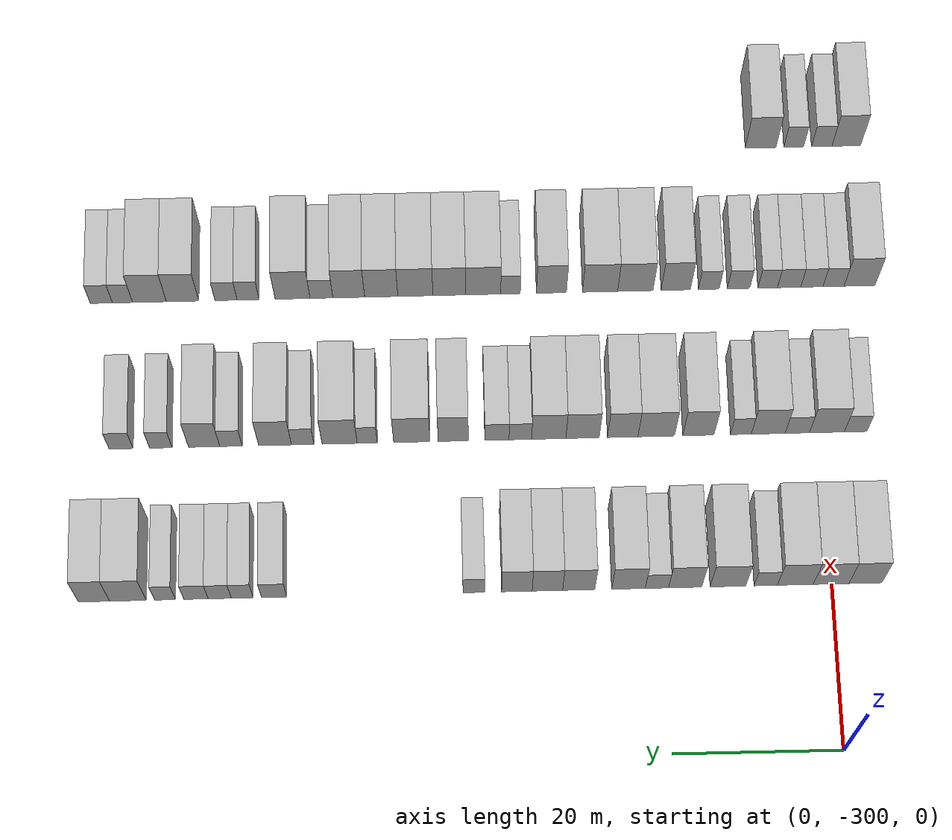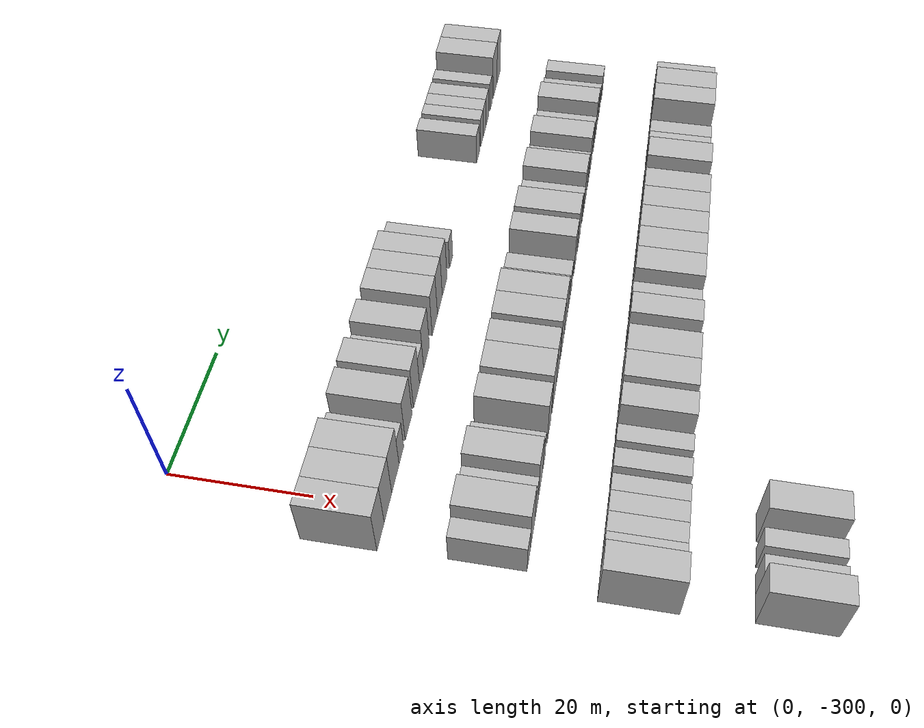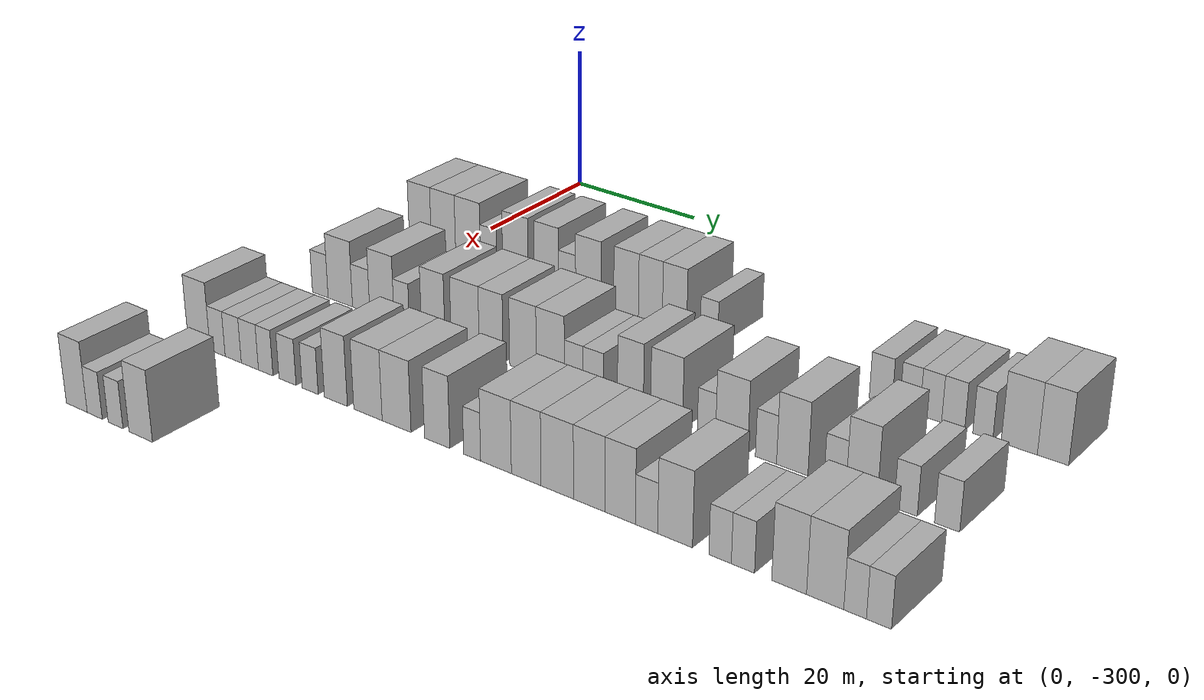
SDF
<sdf version="1.6">
 <world name="default">
  <model name="building_14">
   <static>1</static>
   <pose>25.0000 -303.9843 0 0.000000 0.000000 0.000000</pose>
   <link name="link">
    <pose>0 0 4.50 0 0 0</pose>
    <collision name="collision"><geometry><box><size>10.0000 3.9499 9.0000</size></box></geometry></collision>
    <visual name="visual">
     <cast_shadows>0</cast_shadows>
     <geometry><box><size>10.0000 3.9499 9.0000</size></box></geometry>
     <material>
      <script>
       <uri>model://HANNAS_wall/materials/scripts</uri>
       <uri>model://HANNAS_wall/materials/textures</uri>
       <name>vrc/HANNAS_wall</name>
      </script>
     </material>
    </visual>
   </link>
  </model>
  <model name="building_15">
   <static>1</static>
   <pose>25.0000 -299.8745 0 0.000000 0.000000 0.000000</pose>
   <link name="link">
    <pose>0 0 4.50 0 0 0</pose>
    <collision name="collision"><geometry><box><size>10.0000 4.2697 9.0000</size></box></geometry></collision>
    <visual name="visual">
     <cast_shadows>0</cast_shadows>
     <geometry><box><size>10.0000 4.2697 9.0000</size></box></geometry>
     <material>
      <script>
       <uri>model://HANNAS_wall/materials/scripts</uri>
       <uri>model://HANNAS_wall/materials/textures</uri>
       <name>vrc/HANNAS_wall</name>
      </script>
     </material>
    </visual>
   </link>
  </model>
  <model name="building_16">
   <static>1</static>
   <pose>25.0000 -295.5966 0 0.000000 0.000000 0.000000</pose>
   <link name="link">
    <pose>0 0 4.50 0 0 0</pose>
    <collision name="collision"><geometry><box><size>10.0000 4.2861 9.0000</size></box></geometry></collision>
    <visual name="visual">
     <cast_shadows>0</cast_shadows>
     <geometry><box><size>10.0000 4.2861 9.0000</size></box></geometry>
     <material>
      <script>
       <uri>model://HANNAS_wall/materials/scripts</uri>
       <uri>model://HANNAS_wall/materials/textures</uri>
       <name>vrc/HANNAS_wall</name>
      </script>
     </material>
    </visual>
   </link>
  </model>
  <model name="building_17">
   <static>1</static>
   <pose>25.0000 -292.0606 0 0.000000 0.000000 0.000000</pose>
   <link name="link">
    <pose>0 0 3.00 0 0 0</pose>
    <collision name="collision"><geometry><box><size>10.0000 2.7860 6.0000</size></box></geometry></collision>
    <visual name="visual">
     <cast_shadows>0</cast_shadows>
     <geometry><box><size>10.0000 2.7860 6.0000</size></box></geometry>
     <material>
      <script>
       <uri>model://HANNAS_wall/materials/scripts</uri>
       <uri>model://HANNAS_wall/materials/textures</uri>
       <name>vrc/HANNAS_wall</name>
      </script>
     </material>
    </visual>
   </link>
  </model>
  <model name="building_18">
   <static>1</static>
   <pose>25.0000 -287.5462 0 0.000000 0.000000 0.000000</pose>
   <link name="link">
    <pose>0 0 4.50 0 0 0</pose>
    <collision name="collision"><geometry><box><size>10.0000 4.2428 9.0000</size></box></geometry></collision>
    <visual name="visual">
     <cast_shadows>0</cast_shadows>
     <geometry><box><size>10.0000 4.2428 9.0000</size></box></geometry>
     <material>
      <script>
       <uri>model://HANNAS_wall/materials/scripts</uri>
       <uri>model://HANNAS_wall/materials/textures</uri>
       <name>vrc/HANNAS_wall</name>
      </script>
     </material>
    </visual>
   </link>
  </model>
  <model name="building_19">
   <static>1</static>
   <pose>25.0000 -282.4468 0 0.000000 0.000000 0.000000</pose>
   <link name="link">
    <pose>0 0 4.50 0 0 0</pose>
    <collision name="collision"><geometry><box><size>10.0000 3.9561 9.0000</size></box></geometry></collision>
    <visual name="visual">
     <cast_shadows>0</cast_shadows>
     <geometry><box><size>10.0000 3.9561 9.0000</size></box></geometry>
     <material>
      <script>
       <uri>model://HANNAS_wall/materials/scripts</uri>
       <uri>model://HANNAS_wall/materials/textures</uri>
       <name>vrc/HANNAS_wall</name>
      </script>
     </material>
    </visual>
   </link>
  </model>
  <model name="building_20">
   <static>1</static>
   <pose>25.0000 -279.0800 0 0.000000 0.000000 0.000000</pose>
   <link name="link">
    <pose>0 0 3.00 0 0 0</pose>
    <collision name="collision"><geometry><box><size>10.0000 2.7774 6.0000</size></box></geometry></collision>
    <visual name="visual">
     <cast_shadows>0</cast_shadows>
     <geometry><box><size>10.0000 2.7774 6.0000</size></box></geometry>
     <material>
      <script>
       <uri>model://HANNAS_wall/materials/scripts</uri>
       <uri>model://HANNAS_wall/materials/textures</uri>
       <name>vrc/HANNAS_wall</name>
      </script>
     </material>
    </visual>
   </link>
  </model>
  <model name="building_21">
   <static>1</static>
   <pose>25.0000 -275.6909 0 0.000000 0.000000 0.000000</pose>
   <link name="link">
    <pose>0 0 4.50 0 0 0</pose>
    <collision name="collision"><geometry><box><size>10.0000 4.0008 9.0000</size></box></geometry></collision>
    <visual name="visual">
     <cast_shadows>0</cast_shadows>
     <geometry><box><size>10.0000 4.0008 9.0000</size></box></geometry>
     <material>
      <script>
       <uri>model://HANNAS_wall/materials/scripts</uri>
       <uri>model://HANNAS_wall/materials/textures</uri>
       <name>vrc/HANNAS_wall</name>
      </script>
     </material>
    </visual>
   </link>
  </model>
  <model name="building_22">
   <static>1</static>
   <pose>25.0000 -269.7736 0 0.000000 0.000000 0.000000</pose>
   <link name="link">
    <pose>0 0 4.50 0 0 0</pose>
    <collision name="collision"><geometry><box><size>10.0000 3.8338 9.0000</size></box></geometry></collision>
    <visual name="visual">
     <cast_shadows>0</cast_shadows>
     <geometry><box><size>10.0000 3.8338 9.0000</size></box></geometry>
     <material>
      <script>
       <uri>model://HANNAS_wall/materials/scripts</uri>
       <uri>model://HANNAS_wall/materials/textures</uri>
       <name>vrc/HANNAS_wall</name>
      </script>
     </material>
    </visual>
   </link>
  </model>
  <model name="building_23">
   <static>1</static>
   <pose>25.0000 -266.0388 0 0.000000 0.000000 0.000000</pose>
   <link name="link">
    <pose>0 0 4.50 0 0 0</pose>
    <collision name="collision"><geometry><box><size>10.0000 3.6357 9.0000</size></box></geometry></collision>
    <visual name="visual">
     <cast_shadows>0</cast_shadows>
     <geometry><box><size>10.0000 3.6357 9.0000</size></box></geometry>
     <material>
      <script>
       <uri>model://HANNAS_wall/materials/scripts</uri>
       <uri>model://HANNAS_wall/materials/textures</uri>
       <name>vrc/HANNAS_wall</name>
      </script>
     </material>
    </visual>
   </link>
  </model>
  <model name="building_24">
   <static>1</static>
   <pose>25.0000 -262.4024 0 0.000000 0.000000 0.000000</pose>
   <link name="link">
    <pose>0 0 4.50 0 0 0</pose>
    <collision name="collision"><geometry><box><size>10.0000 3.6371 9.0000</size></box></geometry></collision>
    <visual name="visual">
     <cast_shadows>0</cast_shadows>
     <geometry><box><size>10.0000 3.6371 9.0000</size></box></geometry>
     <material>
      <script>
       <uri>model://HANNAS_wall/materials/scripts</uri>
       <uri>model://HANNAS_wall/materials/textures</uri>
       <name>vrc/HANNAS_wall</name>
      </script>
     </material>
    </visual>
   </link>
  </model>
  <model name="building_25">
   <static>1</static>
   <pose>25.0000 -257.2900 0 0.000000 0.000000 0.000000</pose>
   <link name="link">
    <pose>0 0 3.00 0 0 0</pose>
    <collision name="collision"><geometry><box><size>10.0000 2.5878 6.0000</size></box></geometry></collision>
    <visual name="visual">
     <cast_shadows>0</cast_shadows>
     <geometry><box><size>10.0000 2.5878 6.0000</size></box></geometry>
     <material>
      <script>
       <uri>model://HANNAS_wall/materials/scripts</uri>
       <uri>model://HANNAS_wall/materials/textures</uri>
       <name>vrc/HANNAS_wall</name>
      </script>
     </material>
    </visual>
   </link>
  </model>
  <model name="building_26">
   <static>1</static>
   <pose>25.0000 -233.5116 0 0.000000 0.000000 0.000000</pose>
   <link name="link">
    <pose>0 0 3.00 0 0 0</pose>
    <collision name="collision"><geometry><box><size>10.0000 2.9897 6.0000</size></box></geometry></collision>
    <visual name="visual">
     <cast_shadows>0</cast_shadows>
     <geometry><box><size>10.0000 2.9897 6.0000</size></box></geometry>
     <material>
      <script>
       <uri>model://HANNAS_wall/materials/scripts</uri>
       <uri>model://HANNAS_wall/materials/textures</uri>
       <name>vrc/HANNAS_wall</name>
      </script>
     </material>
    </visual>
   </link>
  </model>
  <model name="building_27">
   <static>1</static>
   <pose>25.0000 -229.7258 0 0.000000 0.000000 0.000000</pose>
   <link name="link">
    <pose>0 0 3.00 0 0 0</pose>
    <collision name="collision"><geometry><box><size>10.0000 2.5821 6.0000</size></box></geometry></collision>
    <visual name="visual">
     <cast_shadows>0</cast_shadows>
     <geometry><box><size>10.0000 2.5821 6.0000</size></box></geometry>
     <material>
      <script>
       <uri>model://HANNAS_wall/materials/scripts</uri>
       <uri>model://HANNAS_wall/materials/textures</uri>
       <name>vrc/HANNAS_wall</name>
      </script>
     </material>
    </visual>
   </link>
  </model>
  <model name="building_28">
   <static>1</static>
   <pose>25.0000 -227.0556 0 0.000000 0.000000 0.000000</pose>
   <link name="link">
    <pose>0 0 3.00 0 0 0</pose>
    <collision name="collision"><geometry><box><size>10.0000 2.7582 6.0000</size></box></geometry></collision>
    <visual name="visual">
     <cast_shadows>0</cast_shadows>
     <geometry><box><size>10.0000 2.7582 6.0000</size></box></geometry>
     <material>
      <script>
       <uri>model://HANNAS_wall/materials/scripts</uri>
       <uri>model://HANNAS_wall/materials/textures</uri>
       <name>vrc/HANNAS_wall</name>
      </script>
     </material>
    </visual>
   </link>
  </model>
  <model name="building_29">
   <static>1</static>
   <pose>25.0000 -224.2311 0 0.000000 0.000000 0.000000</pose>
   <link name="link">
    <pose>0 0 3.00 0 0 0</pose>
    <collision name="collision"><geometry><box><size>10.0000 2.8908 6.0000</size></box></geometry></collision>
    <visual name="visual">
     <cast_shadows>0</cast_shadows>
     <geometry><box><size>10.0000 2.8908 6.0000</size></box></geometry>
     <material>
      <script>
       <uri>model://HANNAS_wall/materials/scripts</uri>
       <uri>model://HANNAS_wall/materials/textures</uri>
       <name>vrc/HANNAS_wall</name>
      </script>
     </material>
    </visual>
   </link>
  </model>
  <model name="building_30">
   <static>1</static>
   <pose>25.0000 -220.5526 0 0.000000 0.000000 0.000000</pose>
   <link name="link">
    <pose>0 0 3.00 0 0 0</pose>
    <collision name="collision"><geometry><box><size>10.0000 2.4663 6.0000</size></box></geometry></collision>
    <visual name="visual">
     <cast_shadows>0</cast_shadows>
     <geometry><box><size>10.0000 2.4663 6.0000</size></box></geometry>
     <material>
      <script>
       <uri>model://HANNAS_wall/materials/scripts</uri>
       <uri>model://HANNAS_wall/materials/textures</uri>
       <name>vrc/HANNAS_wall</name>
      </script>
     </material>
    </visual>
   </link>
  </model>
  <model name="building_31">
   <static>1</static>
   <pose>25.0000 -216.1417 0 0.000000 0.000000 0.000000</pose>
   <link name="link">
    <pose>0 0 4.50 0 0 0</pose>
    <collision name="collision"><geometry><box><size>10.0000 4.3555 9.0000</size></box></geometry></collision>
    <visual name="visual">
     <cast_shadows>0</cast_shadows>
     <geometry><box><size>10.0000 4.3555 9.0000</size></box></geometry>
     <material>
      <script>
       <uri>model://HANNAS_wall/materials/scripts</uri>
       <uri>model://HANNAS_wall/materials/textures</uri>
       <name>vrc/HANNAS_wall</name>
      </script>
     </material>
    </visual>
   </link>
  </model>
  <model name="building_32">
   <static>1</static>
   <pose>25.0000 -212.1116 0 0.000000 0.000000 0.000000</pose>
   <link name="link">
    <pose>0 0 4.50 0 0 0</pose>
    <collision name="collision"><geometry><box><size>10.0000 3.7047 9.0000</size></box></geometry></collision>
    <visual name="visual">
     <cast_shadows>0</cast_shadows>
     <geometry><box><size>10.0000 3.7047 9.0000</size></box></geometry>
     <material>
      <script>
       <uri>model://HANNAS_wall/materials/scripts</uri>
       <uri>model://HANNAS_wall/materials/textures</uri>
       <name>vrc/HANNAS_wall</name>
      </script>
     </material>
    </visual>
   </link>
  </model>
  <model name="building_188">
   <static>1</static>
   <pose>44.0000 -304.1662 0 0.000000 0.000000 0.000000</pose>
   <link name="link">
    <pose>0 0 3.00 0 0 0</pose>
    <collision name="collision"><geometry><box><size>10.0000 2.7591 6.0000</size></box></geometry></collision>
    <visual name="visual">
     <cast_shadows>0</cast_shadows>
     <geometry><box><size>10.0000 2.7591 6.0000</size></box></geometry>
     <material>
      <script>
       <uri>model://HANNAS_wall/materials/scripts</uri>
       <uri>model://HANNAS_wall/materials/textures</uri>
       <name>vrc/HANNAS_wall</name>
      </script>
     </material>
    </visual>
   </link>
  </model>
  <model name="building_189">
   <static>1</static>
   <pose>44.0000 -300.6601 0 0.000000 0.000000 0.000000</pose>
   <link name="link">
    <pose>0 0 4.50 0 0 0</pose>
    <collision name="collision"><geometry><box><size>10.0000 4.2531 9.0000</size></box></geometry></collision>
    <visual name="visual">
     <cast_shadows>0</cast_shadows>
     <geometry><box><size>10.0000 4.2531 9.0000</size></box></geometry>
     <material>
      <script>
       <uri>model://HANNAS_wall/materials/scripts</uri>
       <uri>model://HANNAS_wall/materials/textures</uri>
       <name>vrc/HANNAS_wall</name>
      </script>
     </material>
    </visual>
   </link>
  </model>
  <model name="building_190">
   <static>1</static>
   <pose>44.0000 -297.0552 0 0.000000 0.000000 0.000000</pose>
   <link name="link">
    <pose>0 0 3.00 0 0 0</pose>
    <collision name="collision"><geometry><box><size>10.0000 2.9566 6.0000</size></box></geometry></collision>
    <visual name="visual">
     <cast_shadows>0</cast_shadows>
     <geometry><box><size>10.0000 2.9566 6.0000</size></box></geometry>
     <material>
      <script>
       <uri>model://HANNAS_wall/materials/scripts</uri>
       <uri>model://HANNAS_wall/materials/textures</uri>
       <name>vrc/HANNAS_wall</name>
      </script>
     </material>
    </visual>
   </link>
  </model>
  <model name="building_191">
   <static>1</static>
   <pose>44.0000 -293.5176 0 0.000000 0.000000 0.000000</pose>
   <link name="link">
    <pose>0 0 4.50 0 0 0</pose>
    <collision name="collision"><geometry><box><size>10.0000 4.1186 9.0000</size></box></geometry></collision>
    <visual name="visual">
     <cast_shadows>0</cast_shadows>
     <geometry><box><size>10.0000 4.1186 9.0000</size></box></geometry>
     <material>
      <script>
       <uri>model://HANNAS_wall/materials/scripts</uri>
       <uri>model://HANNAS_wall/materials/textures</uri>
       <name>vrc/HANNAS_wall</name>
      </script>
     </material>
    </visual>
   </link>
  </model>
  <model name="building_192">
   <static>1</static>
   <pose>44.0000 -290.1883 0 0.000000 0.000000 0.000000</pose>
   <link name="link">
    <pose>0 0 3.00 0 0 0</pose>
    <collision name="collision"><geometry><box><size>10.0000 2.5401 6.0000</size></box></geometry></collision>
    <visual name="visual">
     <cast_shadows>0</cast_shadows>
     <geometry><box><size>10.0000 2.5401 6.0000</size></box></geometry>
     <material>
      <script>
       <uri>model://HANNAS_wall/materials/scripts</uri>
       <uri>model://HANNAS_wall/materials/textures</uri>
       <name>vrc/HANNAS_wall</name>
      </script>
     </material>
    </visual>
   </link>
  </model>
  <model name="building_193">
   <static>1</static>
   <pose>44.0000 -285.0162 0 0.000000 0.000000 0.000000</pose>
   <link name="link">
    <pose>0 0 4.50 0 0 0</pose>
    <collision name="collision"><geometry><box><size>10.0000 3.8040 9.0000</size></box></geometry></collision>
    <visual name="visual">
     <cast_shadows>0</cast_shadows>
     <geometry><box><size>10.0000 3.8040 9.0000</size></box></geometry>
     <material>
      <script>
       <uri>model://HANNAS_wall/materials/scripts</uri>
       <uri>model://HANNAS_wall/materials/textures</uri>
       <name>vrc/HANNAS_wall</name>
      </script>
     </material>
    </visual>
   </link>
  </model>
  <model name="building_194">
   <static>1</static>
   <pose>44.0000 -279.8894 0 0.000000 0.000000 0.000000</pose>
   <link name="link">
    <pose>0 0 4.50 0 0 0</pose>
    <collision name="collision"><geometry><box><size>10.0000 4.4496 9.0000</size></box></geometry></collision>
    <visual name="visual">
     <cast_shadows>0</cast_shadows>
     <geometry><box><size>10.0000 4.4496 9.0000</size></box></geometry>
     <material>
      <script>
       <uri>model://HANNAS_wall/materials/scripts</uri>
       <uri>model://HANNAS_wall/materials/textures</uri>
       <name>vrc/HANNAS_wall</name>
      </script>
     </material>
    </visual>
   </link>
  </model>
  <model name="building_195">
   <static>1</static>
   <pose>44.0000 -275.8088 0 0.000000 0.000000 0.000000</pose>
   <link name="link">
    <pose>0 0 4.50 0 0 0</pose>
    <collision name="collision"><geometry><box><size>10.0000 3.7117 9.0000</size></box></geometry></collision>
    <visual name="visual">
     <cast_shadows>0</cast_shadows>
     <geometry><box><size>10.0000 3.7117 9.0000</size></box></geometry>
     <material>
      <script>
       <uri>model://HANNAS_wall/materials/scripts</uri>
       <uri>model://HANNAS_wall/materials/textures</uri>
       <name>vrc/HANNAS_wall</name>
      </script>
     </material>
    </visual>
   </link>
  </model>
  <model name="building_196">
   <static>1</static>
   <pose>44.0000 -270.9281 0 0.000000 0.000000 0.000000</pose>
   <link name="link">
    <pose>0 0 4.50 0 0 0</pose>
    <collision name="collision"><geometry><box><size>10.0000 4.0497 9.0000</size></box></geometry></collision>
    <visual name="visual">
     <cast_shadows>0</cast_shadows>
     <geometry><box><size>10.0000 4.0497 9.0000</size></box></geometry>
     <material>
      <script>
       <uri>model://HANNAS_wall/materials/scripts</uri>
       <uri>model://HANNAS_wall/materials/textures</uri>
       <name>vrc/HANNAS_wall</name>
      </script>
     </material>
    </visual>
   </link>
  </model>
  <model name="building_197">
   <static>1</static>
   <pose>44.0000 -266.8199 0 0.000000 0.000000 0.000000</pose>
   <link name="link">
    <pose>0 0 4.50 0 0 0</pose>
    <collision name="collision"><geometry><box><size>10.0000 4.1667 9.0000</size></box></geometry></collision>
    <visual name="visual">
     <cast_shadows>0</cast_shadows>
     <geometry><box><size>10.0000 4.1667 9.0000</size></box></geometry>
     <material>
      <script>
       <uri>model://HANNAS_wall/materials/scripts</uri>
       <uri>model://HANNAS_wall/materials/textures</uri>
       <name>vrc/HANNAS_wall</name>
      </script>
     </material>
    </visual>
   </link>
  </model>
  <model name="building_198">
   <static>1</static>
   <pose>44.0000 -263.3643 0 0.000000 0.000000 0.000000</pose>
   <link name="link">
    <pose>0 0 3.00 0 0 0</pose>
    <collision name="collision"><geometry><box><size>10.0000 2.7443 6.0000</size></box></geometry></collision>
    <visual name="visual">
     <cast_shadows>0</cast_shadows>
     <geometry><box><size>10.0000 2.7443 6.0000</size></box></geometry>
     <material>
      <script>
       <uri>model://HANNAS_wall/materials/scripts</uri>
       <uri>model://HANNAS_wall/materials/textures</uri>
       <name>vrc/HANNAS_wall</name>
      </script>
     </material>
    </visual>
   </link>
  </model>
  <model name="building_199">
   <static>1</static>
   <pose>44.0000 -260.5247 0 0.000000 0.000000 0.000000</pose>
   <link name="link">
    <pose>0 0 3.00 0 0 0</pose>
    <collision name="collision"><geometry><box><size>10.0000 2.9349 6.0000</size></box></geometry></collision>
    <visual name="visual">
     <cast_shadows>0</cast_shadows>
     <geometry><box><size>10.0000 2.9349 6.0000</size></box></geometry>
     <material>
      <script>
       <uri>model://HANNAS_wall/materials/scripts</uri>
       <uri>model://HANNAS_wall/materials/textures</uri>
       <name>vrc/HANNAS_wall</name>
      </script>
     </material>
    </visual>
   </link>
  </model>
  <model name="building_200">
   <static>1</static>
   <pose>44.0000 -255.2280 0 0.000000 0.000000 0.000000</pose>
   <link name="link">
    <pose>0 0 4.50 0 0 0</pose>
    <collision name="collision"><geometry><box><size>10.0000 3.6584 9.0000</size></box></geometry></collision>
    <visual name="visual">
     <cast_shadows>0</cast_shadows>
     <geometry><box><size>10.0000 3.6584 9.0000</size></box></geometry>
     <material>
      <script>
       <uri>model://HANNAS_wall/materials/scripts</uri>
       <uri>model://HANNAS_wall/materials/textures</uri>
       <name>vrc/HANNAS_wall</name>
      </script>
     </material>
    </visual>
   </link>
  </model>
  <model name="building_201">
   <static>1</static>
   <pose>44.0000 -250.1969 0 0.000000 0.000000 0.000000</pose>
   <link name="link">
    <pose>0 0 4.50 0 0 0</pose>
    <collision name="collision"><geometry><box><size>10.0000 4.4039 9.0000</size></box></geometry></collision>
    <visual name="visual">
     <cast_shadows>0</cast_shadows>
     <geometry><box><size>10.0000 4.4039 9.0000</size></box></geometry>
     <material>
      <script>
       <uri>model://HANNAS_wall/materials/scripts</uri>
       <uri>model://HANNAS_wall/materials/textures</uri>
       <name>vrc/HANNAS_wall</name>
      </script>
     </material>
    </visual>
   </link>
  </model>
  <model name="building_202">
   <static>1</static>
   <pose>44.0000 -244.7745 0 0.000000 0.000000 0.000000</pose>
   <link name="link">
    <pose>0 0 3.00 0 0 0</pose>
    <collision name="collision"><geometry><box><size>10.0000 2.4409 6.0000</size></box></geometry></collision>
    <visual name="visual">
     <cast_shadows>0</cast_shadows>
     <geometry><box><size>10.0000 2.4409 6.0000</size></box></geometry>
     <material>
      <script>
       <uri>model://HANNAS_wall/materials/scripts</uri>
       <uri>model://HANNAS_wall/materials/textures</uri>
       <name>vrc/HANNAS_wall</name>
      </script>
     </material>
    </visual>
   </link>
  </model>
  <model name="building_203">
   <static>1</static>
   <pose>44.0000 -241.4277 0 0.000000 0.000000 0.000000</pose>
   <link name="link">
    <pose>0 0 4.50 0 0 0</pose>
    <collision name="collision"><geometry><box><size>10.0000 4.2526 9.0000</size></box></geometry></collision>
    <visual name="visual">
     <cast_shadows>0</cast_shadows>
     <geometry><box><size>10.0000 4.2526 9.0000</size></box></geometry>
     <material>
      <script>
       <uri>model://HANNAS_wall/materials/scripts</uri>
       <uri>model://HANNAS_wall/materials/textures</uri>
       <name>vrc/HANNAS_wall</name>
      </script>
     </material>
    </visual>
   </link>
  </model>
  <model name="building_204">
   <static>1</static>
   <pose>44.0000 -236.9401 0 0.000000 0.000000 0.000000</pose>
   <link name="link">
    <pose>0 0 3.00 0 0 0</pose>
    <collision name="collision"><geometry><box><size>10.0000 2.7226 6.0000</size></box></geometry></collision>
    <visual name="visual">
     <cast_shadows>0</cast_shadows>
     <geometry><box><size>10.0000 2.7226 6.0000</size></box></geometry>
     <material>
      <script>
       <uri>model://HANNAS_wall/materials/scripts</uri>
       <uri>model://HANNAS_wall/materials/textures</uri>
       <name>vrc/HANNAS_wall</name>
      </script>
     </material>
    </visual>
   </link>
  </model>
  <model name="building_205">
   <static>1</static>
   <pose>44.0000 -233.5888 0 0.000000 0.000000 0.000000</pose>
   <link name="link">
    <pose>0 0 4.50 0 0 0</pose>
    <collision name="collision"><geometry><box><size>10.0000 3.9799 9.0000</size></box></geometry></collision>
    <visual name="visual">
     <cast_shadows>0</cast_shadows>
     <geometry><box><size>10.0000 3.9799 9.0000</size></box></geometry>
     <material>
      <script>
       <uri>model://HANNAS_wall/materials/scripts</uri>
       <uri>model://HANNAS_wall/materials/textures</uri>
       <name>vrc/HANNAS_wall</name>
      </script>
     </material>
    </visual>
   </link>
  </model>
  <model name="building_206">
   <static>1</static>
   <pose>44.0000 -228.2419 0 0.000000 0.000000 0.000000</pose>
   <link name="link">
    <pose>0 0 3.00 0 0 0</pose>
    <collision name="collision"><geometry><box><size>10.0000 2.7140 6.0000</size></box></geometry></collision>
    <visual name="visual">
     <cast_shadows>0</cast_shadows>
     <geometry><box><size>10.0000 2.7140 6.0000</size></box></geometry>
     <material>
      <script>
       <uri>model://HANNAS_wall/materials/scripts</uri>
       <uri>model://HANNAS_wall/materials/textures</uri>
       <name>vrc/HANNAS_wall</name>
      </script>
     </material>
    </visual>
   </link>
  </model>
  <model name="building_207">
   <static>1</static>
   <pose>44.0000 -224.9918 0 0.000000 0.000000 0.000000</pose>
   <link name="link">
    <pose>0 0 4.50 0 0 0</pose>
    <collision name="collision"><geometry><box><size>10.0000 3.7862 9.0000</size></box></geometry></collision>
    <visual name="visual">
     <cast_shadows>0</cast_shadows>
     <geometry><box><size>10.0000 3.7862 9.0000</size></box></geometry>
     <material>
      <script>
       <uri>model://HANNAS_wall/materials/scripts</uri>
       <uri>model://HANNAS_wall/materials/textures</uri>
       <name>vrc/HANNAS_wall</name>
      </script>
     </material>
    </visual>
   </link>
  </model>
  <model name="building_208">
   <static>1</static>
   <pose>44.0000 -219.7328 0 0.000000 0.000000 0.000000</pose>
   <link name="link">
    <pose>0 0 3.00 0 0 0</pose>
    <collision name="collision"><geometry><box><size>10.0000 2.7319 6.0000</size></box></geometry></collision>
    <visual name="visual">
     <cast_shadows>0</cast_shadows>
     <geometry><box><size>10.0000 2.7319 6.0000</size></box></geometry>
     <material>
      <script>
       <uri>model://HANNAS_wall/materials/scripts</uri>
       <uri>model://HANNAS_wall/materials/textures</uri>
       <name>vrc/HANNAS_wall</name>
      </script>
     </material>
    </visual>
   </link>
  </model>
  <model name="building_209">
   <static>1</static>
   <pose>44.0000 -214.9180 0 0.000000 0.000000 0.000000</pose>
   <link name="link">
    <pose>0 0 3.00 0 0 0</pose>
    <collision name="collision"><geometry><box><size>10.0000 2.8978 6.0000</size></box></geometry></collision>
    <visual name="visual">
     <cast_shadows>0</cast_shadows>
     <geometry><box><size>10.0000 2.8978 6.0000</size></box></geometry>
     <material>
      <script>
       <uri>model://HANNAS_wall/materials/scripts</uri>
       <uri>model://HANNAS_wall/materials/textures</uri>
       <name>vrc/HANNAS_wall</name>
      </script>
     </material>
    </visual>
   </link>
  </model>
  <model name="building_367">
   <static>1</static>
   <pose>63.0000 -306.0193 0 0.000000 0.000000 0.000000</pose>
   <link name="link">
    <pose>0 0 4.50 0 0 0</pose>
    <collision name="collision"><geometry><box><size>10.0000 3.8556 9.0000</size></box></geometry></collision>
    <visual name="visual">
     <cast_shadows>0</cast_shadows>
     <geometry><box><size>10.0000 3.8556 9.0000</size></box></geometry>
     <material>
      <script>
       <uri>model://HANNAS_wall/materials/scripts</uri>
       <uri>model://HANNAS_wall/materials/textures</uri>
       <name>vrc/HANNAS_wall</name>
      </script>
     </material>
    </visual>
   </link>
  </model>
  <model name="building_368">
   <static>1</static>
   <pose>63.0000 -302.7868 0 0.000000 0.000000 0.000000</pose>
   <link name="link">
    <pose>0 0 3.00 0 0 0</pose>
    <collision name="collision"><geometry><box><size>10.0000 2.6093 6.0000</size></box></geometry></collision>
    <visual name="visual">
     <cast_shadows>0</cast_shadows>
     <geometry><box><size>10.0000 2.6093 6.0000</size></box></geometry>
     <material>
      <script>
       <uri>model://HANNAS_wall/materials/scripts</uri>
       <uri>model://HANNAS_wall/materials/textures</uri>
       <name>vrc/HANNAS_wall</name>
      </script>
     </material>
    </visual>
   </link>
  </model>
  <model name="building_369">
   <static>1</static>
   <pose>63.0000 -300.0994 0 0.000000 0.000000 0.000000</pose>
   <link name="link">
    <pose>0 0 3.00 0 0 0</pose>
    <collision name="collision"><geometry><box><size>10.0000 2.7655 6.0000</size></box></geometry></collision>
    <visual name="visual">
     <cast_shadows>0</cast_shadows>
     <geometry><box><size>10.0000 2.7655 6.0000</size></box></geometry>
     <material>
      <script>
       <uri>model://HANNAS_wall/materials/scripts</uri>
       <uri>model://HANNAS_wall/materials/textures</uri>
       <name>vrc/HANNAS_wall</name>
      </script>
     </material>
    </visual>
   </link>
  </model>
  <model name="building_370">
   <static>1</static>
   <pose>63.0000 -297.2694 0 0.000000 0.000000 0.000000</pose>
   <link name="link">
    <pose>0 0 3.00 0 0 0</pose>
    <collision name="collision"><geometry><box><size>10.0000 2.8946 6.0000</size></box></geometry></collision>
    <visual name="visual">
     <cast_shadows>0</cast_shadows>
     <geometry><box><size>10.0000 2.8946 6.0000</size></box></geometry>
     <material>
      <script>
       <uri>model://HANNAS_wall/materials/scripts</uri>
       <uri>model://HANNAS_wall/materials/textures</uri>
       <name>vrc/HANNAS_wall</name>
      </script>
     </material>
    </visual>
   </link>
  </model>
  <model name="building_371">
   <static>1</static>
   <pose>63.0000 -294.6077 0 0.000000 0.000000 0.000000</pose>
   <link name="link">
    <pose>0 0 3.00 0 0 0</pose>
    <collision name="collision"><geometry><box><size>10.0000 2.4286 6.0000</size></box></geometry></collision>
    <visual name="visual">
     <cast_shadows>0</cast_shadows>
     <geometry><box><size>10.0000 2.4286 6.0000</size></box></geometry>
     <material>
      <script>
       <uri>model://HANNAS_wall/materials/scripts</uri>
       <uri>model://HANNAS_wall/materials/textures</uri>
       <name>vrc/HANNAS_wall</name>
      </script>
     </material>
    </visual>
   </link>
  </model>
  <model name="building_372">
   <static>1</static>
   <pose>63.0000 -290.9946 0 0.000000 0.000000 0.000000</pose>
   <link name="link">
    <pose>0 0 3.00 0 0 0</pose>
    <collision name="collision"><geometry><box><size>10.0000 2.7977 6.0000</size></box></geometry></collision>
    <visual name="visual">
     <cast_shadows>0</cast_shadows>
     <geometry><box><size>10.0000 2.7977 6.0000</size></box></geometry>
     <material>
      <script>
       <uri>model://HANNAS_wall/materials/scripts</uri>
       <uri>model://HANNAS_wall/materials/textures</uri>
       <name>vrc/HANNAS_wall</name>
      </script>
     </material>
    </visual>
   </link>
  </model>
  <model name="building_373">
   <static>1</static>
   <pose>63.0000 -287.3078 0 0.000000 0.000000 0.000000</pose>
   <link name="link">
    <pose>0 0 3.00 0 0 0</pose>
    <collision name="collision"><geometry><box><size>10.0000 2.5759 6.0000</size></box></geometry></collision>
    <visual name="visual">
     <cast_shadows>0</cast_shadows>
     <geometry><box><size>10.0000 2.5759 6.0000</size></box></geometry>
     <material>
      <script>
       <uri>model://HANNAS_wall/materials/scripts</uri>
       <uri>model://HANNAS_wall/materials/textures</uri>
       <name>vrc/HANNAS_wall</name>
      </script>
     </material>
    </visual>
   </link>
  </model>
  <model name="building_374">
   <static>1</static>
   <pose>63.0000 -283.2006 0 0.000000 0.000000 0.000000</pose>
   <link name="link">
    <pose>0 0 4.50 0 0 0</pose>
    <collision name="collision"><geometry><box><size>10.0000 3.6383 9.0000</size></box></geometry></collision>
    <visual name="visual">
     <cast_shadows>0</cast_shadows>
     <geometry><box><size>10.0000 3.6383 9.0000</size></box></geometry>
     <material>
      <script>
       <uri>model://HANNAS_wall/materials/scripts</uri>
       <uri>model://HANNAS_wall/materials/textures</uri>
       <name>vrc/HANNAS_wall</name>
      </script>
     </material>
    </visual>
   </link>
  </model>
  <model name="building_375">
   <static>1</static>
   <pose>63.0000 -278.1908 0 0.000000 0.000000 0.000000</pose>
   <link name="link">
    <pose>0 0 4.50 0 0 0</pose>
    <collision name="collision"><geometry><box><size>10.0000 4.3814 9.0000</size></box></geometry></collision>
    <visual name="visual">
     <cast_shadows>0</cast_shadows>
     <geometry><box><size>10.0000 4.3814 9.0000</size></box></geometry>
     <material>
      <script>
       <uri>model://HANNAS_wall/materials/scripts</uri>
       <uri>model://HANNAS_wall/materials/textures</uri>
       <name>vrc/HANNAS_wall</name>
      </script>
     </material>
    </visual>
   </link>
  </model>
  <model name="building_376">
   <static>1</static>
   <pose>63.0000 -273.8181 0 0.000000 0.000000 0.000000</pose>
   <link name="link">
    <pose>0 0 4.50 0 0 0</pose>
    <collision name="collision"><geometry><box><size>10.0000 4.3639 9.0000</size></box></geometry></collision>
    <visual name="visual">
     <cast_shadows>0</cast_shadows>
     <geometry><box><size>10.0000 4.3639 9.0000</size></box></geometry>
     <material>
      <script>
       <uri>model://HANNAS_wall/materials/scripts</uri>
       <uri>model://HANNAS_wall/materials/textures</uri>
       <name>vrc/HANNAS_wall</name>
      </script>
     </material>
    </visual>
   </link>
  </model>
  <model name="building_377">
   <static>1</static>
   <pose>63.0000 -267.7756 0 0.000000 0.000000 0.000000</pose>
   <link name="link">
    <pose>0 0 4.50 0 0 0</pose>
    <collision name="collision"><geometry><box><size>10.0000 3.7212 9.0000</size></box></geometry></collision>
    <visual name="visual">
     <cast_shadows>0</cast_shadows>
     <geometry><box><size>10.0000 3.7212 9.0000</size></box></geometry>
     <material>
      <script>
       <uri>model://HANNAS_wall/materials/scripts</uri>
       <uri>model://HANNAS_wall/materials/textures</uri>
       <name>vrc/HANNAS_wall</name>
      </script>
     </material>
    </visual>
   </link>
  </model>
  <model name="building_378">
   <static>1</static>
   <pose>63.0000 -262.7064 0 0.000000 0.000000 0.000000</pose>
   <link name="link">
    <pose>0 0 3.00 0 0 0</pose>
    <collision name="collision"><geometry><box><size>10.0000 2.4173 6.0000</size></box></geometry></collision>
    <visual name="visual">
     <cast_shadows>0</cast_shadows>
     <geometry><box><size>10.0000 2.4173 6.0000</size></box></geometry>
     <material>
      <script>
       <uri>model://HANNAS_wall/materials/scripts</uri>
       <uri>model://HANNAS_wall/materials/textures</uri>
       <name>vrc/HANNAS_wall</name>
      </script>
     </material>
    </visual>
   </link>
  </model>
  <model name="building_379">
   <static>1</static>
   <pose>63.0000 -259.3385 0 0.000000 0.000000 0.000000</pose>
   <link name="link">
    <pose>0 0 4.50 0 0 0</pose>
    <collision name="collision"><geometry><box><size>10.0000 4.3184 9.0000</size></box></geometry></collision>
    <visual name="visual">
     <cast_shadows>0</cast_shadows>
     <geometry><box><size>10.0000 4.3184 9.0000</size></box></geometry>
     <material>
      <script>
       <uri>model://HANNAS_wall/materials/scripts</uri>
       <uri>model://HANNAS_wall/materials/textures</uri>
       <name>vrc/HANNAS_wall</name>
      </script>
     </material>
    </visual>
   </link>
  </model>
  <model name="building_380">
   <static>1</static>
   <pose>63.0000 -255.1446 0 0.000000 0.000000 0.000000</pose>
   <link name="link">
    <pose>0 0 4.50 0 0 0</pose>
    <collision name="collision"><geometry><box><size>10.0000 4.0695 9.0000</size></box></geometry></collision>
    <visual name="visual">
     <cast_shadows>0</cast_shadows>
     <geometry><box><size>10.0000 4.0695 9.0000</size></box></geometry>
     <material>
      <script>
       <uri>model://HANNAS_wall/materials/scripts</uri>
       <uri>model://HANNAS_wall/materials/textures</uri>
       <name>vrc/HANNAS_wall</name>
      </script>
     </material>
    </visual>
   </link>
  </model>
  <model name="building_381">
   <static>1</static>
   <pose>63.0000 -250.9351 0 0.000000 0.000000 0.000000</pose>
   <link name="link">
    <pose>0 0 4.50 0 0 0</pose>
    <collision name="collision"><geometry><box><size>10.0000 4.3495 9.0000</size></box></geometry></collision>
    <visual name="visual">
     <cast_shadows>0</cast_shadows>
     <geometry><box><size>10.0000 4.3495 9.0000</size></box></geometry>
     <material>
      <script>
       <uri>model://HANNAS_wall/materials/scripts</uri>
       <uri>model://HANNAS_wall/materials/textures</uri>
       <name>vrc/HANNAS_wall</name>
      </script>
     </material>
    </visual>
   </link>
  </model>
  <model name="building_382">
   <static>1</static>
   <pose>63.0000 -246.7007 0 0.000000 0.000000 0.000000</pose>
   <link name="link">
    <pose>0 0 4.50 0 0 0</pose>
    <collision name="collision"><geometry><box><size>10.0000 4.1193 9.0000</size></box></geometry></collision>
    <visual name="visual">
     <cast_shadows>0</cast_shadows>
     <geometry><box><size>10.0000 4.1193 9.0000</size></box></geometry>
     <material>
      <script>
       <uri>model://HANNAS_wall/materials/scripts</uri>
       <uri>model://HANNAS_wall/materials/textures</uri>
       <name>vrc/HANNAS_wall</name>
      </script>
     </material>
    </visual>
   </link>
  </model>
  <model name="building_383">
   <static>1</static>
   <pose>63.0000 -242.6741 0 0.000000 0.000000 0.000000</pose>
   <link name="link">
    <pose>0 0 4.50 0 0 0</pose>
    <collision name="collision"><geometry><box><size>10.0000 3.9340 9.0000</size></box></geometry></collision>
    <visual name="visual">
     <cast_shadows>0</cast_shadows>
     <geometry><box><size>10.0000 3.9340 9.0000</size></box></geometry>
     <material>
      <script>
       <uri>model://HANNAS_wall/materials/scripts</uri>
       <uri>model://HANNAS_wall/materials/textures</uri>
       <name>vrc/HANNAS_wall</name>
      </script>
     </material>
    </visual>
   </link>
  </model>
  <model name="building_384">
   <static>1</static>
   <pose>63.0000 -239.2967 0 0.000000 0.000000 0.000000</pose>
   <link name="link">
    <pose>0 0 3.00 0 0 0</pose>
    <collision name="collision"><geometry><box><size>10.0000 2.8207 6.0000</size></box></geometry></collision>
    <visual name="visual">
     <cast_shadows>0</cast_shadows>
     <geometry><box><size>10.0000 2.8207 6.0000</size></box></geometry>
     <material>
      <script>
       <uri>model://HANNAS_wall/materials/scripts</uri>
       <uri>model://HANNAS_wall/materials/textures</uri>
       <name>vrc/HANNAS_wall</name>
      </script>
     </material>
    </visual>
   </link>
  </model>
  <model name="building_385">
   <static>1</static>
   <pose>63.0000 -235.7256 0 0.000000 0.000000 0.000000</pose>
   <link name="link">
    <pose>0 0 4.50 0 0 0</pose>
    <collision name="collision"><geometry><box><size>10.0000 4.3216 9.0000</size></box></geometry></collision>
    <visual name="visual">
     <cast_shadows>0</cast_shadows>
     <geometry><box><size>10.0000 4.3216 9.0000</size></box></geometry>
     <material>
      <script>
       <uri>model://HANNAS_wall/materials/scripts</uri>
       <uri>model://HANNAS_wall/materials/textures</uri>
       <name>vrc/HANNAS_wall</name>
      </script>
     </material>
    </visual>
   </link>
  </model>
  <model name="building_386">
   <static>1</static>
   <pose>63.0000 -230.2184 0 0.000000 0.000000 0.000000</pose>
   <link name="link">
    <pose>0 0 3.00 0 0 0</pose>
    <collision name="collision"><geometry><box><size>10.0000 2.6930 6.0000</size></box></geometry></collision>
    <visual name="visual">
     <cast_shadows>0</cast_shadows>
     <geometry><box><size>10.0000 2.6930 6.0000</size></box></geometry>
     <material>
      <script>
       <uri>model://HANNAS_wall/materials/scripts</uri>
       <uri>model://HANNAS_wall/materials/textures</uri>
       <name>vrc/HANNAS_wall</name>
      </script>
     </material>
    </visual>
   </link>
  </model>
  <model name="building_387">
   <static>1</static>
   <pose>63.0000 -227.4957 0 0.000000 0.000000 0.000000</pose>
   <link name="link">
    <pose>0 0 3.00 0 0 0</pose>
    <collision name="collision"><geometry><box><size>10.0000 2.7523 6.0000</size></box></geometry></collision>
    <visual name="visual">
     <cast_shadows>0</cast_shadows>
     <geometry><box><size>10.0000 2.7523 6.0000</size></box></geometry>
     <material>
      <script>
       <uri>model://HANNAS_wall/materials/scripts</uri>
       <uri>model://HANNAS_wall/materials/textures</uri>
       <name>vrc/HANNAS_wall</name>
      </script>
     </material>
    </visual>
   </link>
  </model>
  <model name="building_388">
   <static>1</static>
   <pose>63.0000 -222.1176 0 0.000000 0.000000 0.000000</pose>
   <link name="link">
    <pose>0 0 4.50 0 0 0</pose>
    <collision name="collision"><geometry><box><size>10.0000 4.0041 9.0000</size></box></geometry></collision>
    <visual name="visual">
     <cast_shadows>0</cast_shadows>
     <geometry><box><size>10.0000 4.0041 9.0000</size></box></geometry>
     <material>
      <script>
       <uri>model://HANNAS_wall/materials/scripts</uri>
       <uri>model://HANNAS_wall/materials/textures</uri>
       <name>vrc/HANNAS_wall</name>
      </script>
     </material>
    </visual>
   </link>
  </model>
  <model name="building_389">
   <static>1</static>
   <pose>63.0000 -218.0225 0 0.000000 0.000000 0.000000</pose>
   <link name="link">
    <pose>0 0 4.50 0 0 0</pose>
    <collision name="collision"><geometry><box><size>10.0000 4.1860 9.0000</size></box></geometry></collision>
    <visual name="visual">
     <cast_shadows>0</cast_shadows>
     <geometry><box><size>10.0000 4.1860 9.0000</size></box></geometry>
     <material>
      <script>
       <uri>model://HANNAS_wall/materials/scripts</uri>
       <uri>model://HANNAS_wall/materials/textures</uri>
       <name>vrc/HANNAS_wall</name>
      </script>
     </material>
    </visual>
   </link>
  </model>
  <model name="building_390">
   <static>1</static>
   <pose>63.0000 -214.6827 0 0.000000 0.000000 0.000000</pose>
   <link name="link">
    <pose>0 0 3.00 0 0 0</pose>
    <collision name="collision"><geometry><box><size>10.0000 2.4936 6.0000</size></box></geometry></collision>
    <visual name="visual">
     <cast_shadows>0</cast_shadows>
     <geometry><box><size>10.0000 2.4936 6.0000</size></box></geometry>
     <material>
      <script>
       <uri>model://HANNAS_wall/materials/scripts</uri>
       <uri>model://HANNAS_wall/materials/textures</uri>
       <name>vrc/HANNAS_wall</name>
      </script>
     </material>
    </visual>
   </link>
  </model>
  <model name="building_391">
   <static>1</static>
   <pose>63.0000 -212.0739 0 0.000000 0.000000 0.000000</pose>
   <link name="link">
    <pose>0 0 3.00 0 0 0</pose>
    <collision name="collision"><geometry><box><size>10.0000 2.7241 6.0000</size></box></geometry></collision>
    <visual name="visual">
     <cast_shadows>0</cast_shadows>
     <geometry><box><size>10.0000 2.7241 6.0000</size></box></geometry>
     <material>
      <script>
       <uri>model://HANNAS_wall/materials/scripts</uri>
       <uri>model://HANNAS_wall/materials/textures</uri>
       <name>vrc/HANNAS_wall</name>
      </script>
     </material>
    </visual>
   </link>
  </model>
  <model name="building_538">
   <static>1</static>
   <pose>82.0000 -305.7303 0 0.000000 0.000000 0.000000</pose>
   <link name="link">
    <pose>0 0 4.50 0 0 0</pose>
    <collision name="collision"><geometry><box><size>10.0000 3.6406 9.0000</size></box></geometry></collision>
    <visual name="visual">
     <cast_shadows>0</cast_shadows>
     <geometry><box><size>10.0000 3.6406 9.0000</size></box></geometry>
     <material>
      <script>
       <uri>model://HANNAS_wall/materials/scripts</uri>
       <uri>model://HANNAS_wall/materials/textures</uri>
       <name>vrc/HANNAS_wall</name>
      </script>
     </material>
    </visual>
   </link>
  </model>
  <model name="building_539">
   <static>1</static>
   <pose>82.0000 -302.6143 0 0.000000 0.000000 0.000000</pose>
   <link name="link">
    <pose>0 0 3.00 0 0 0</pose>
    <collision name="collision"><geometry><box><size>10.0000 2.5913 6.0000</size></box></geometry></collision>
    <visual name="visual">
     <cast_shadows>0</cast_shadows>
     <geometry><box><size>10.0000 2.5913 6.0000</size></box></geometry>
     <material>
      <script>
       <uri>model://HANNAS_wall/materials/scripts</uri>
       <uri>model://HANNAS_wall/materials/textures</uri>
       <name>vrc/HANNAS_wall</name>
      </script>
     </material>
    </visual>
   </link>
  </model>
  <model name="building_540">
   <static>1</static>
   <pose>82.0000 -299.0664 0 0.000000 0.000000 0.000000</pose>
   <link name="link">
    <pose>0 0 3.00 0 0 0</pose>
    <collision name="collision"><geometry><box><size>10.0000 2.5045 6.0000</size></box></geometry></collision>
    <visual name="visual">
     <cast_shadows>0</cast_shadows>
     <geometry><box><size>10.0000 2.5045 6.0000</size></box></geometry>
     <material>
      <script>
       <uri>model://HANNAS_wall/materials/scripts</uri>
       <uri>model://HANNAS_wall/materials/textures</uri>
       <name>vrc/HANNAS_wall</name>
      </script>
     </material>
    </visual>
   </link>
  </model>
  <model name="building_541">
   <static>1</static>
   <pose>82.0000 -294.8686 0 0.000000 0.000000 0.000000</pose>
   <link name="link">
    <pose>0 0 4.50 0 0 0</pose>
    <collision name="collision"><geometry><box><size>10.0000 3.8911 9.0000</size></box></geometry></collision>
    <visual name="visual">
     <cast_shadows>0</cast_shadows>
     <geometry><box><size>10.0000 3.8911 9.0000</size></box></geometry>
     <material>
      <script>
       <uri>model://HANNAS_wall/materials/scripts</uri>
       <uri>model://HANNAS_wall/materials/textures</uri>
       <name>vrc/HANNAS_wall</name>
      </script>
     </material>
    </visual>
   </link>
  </model>
 </world>
</sdf>
